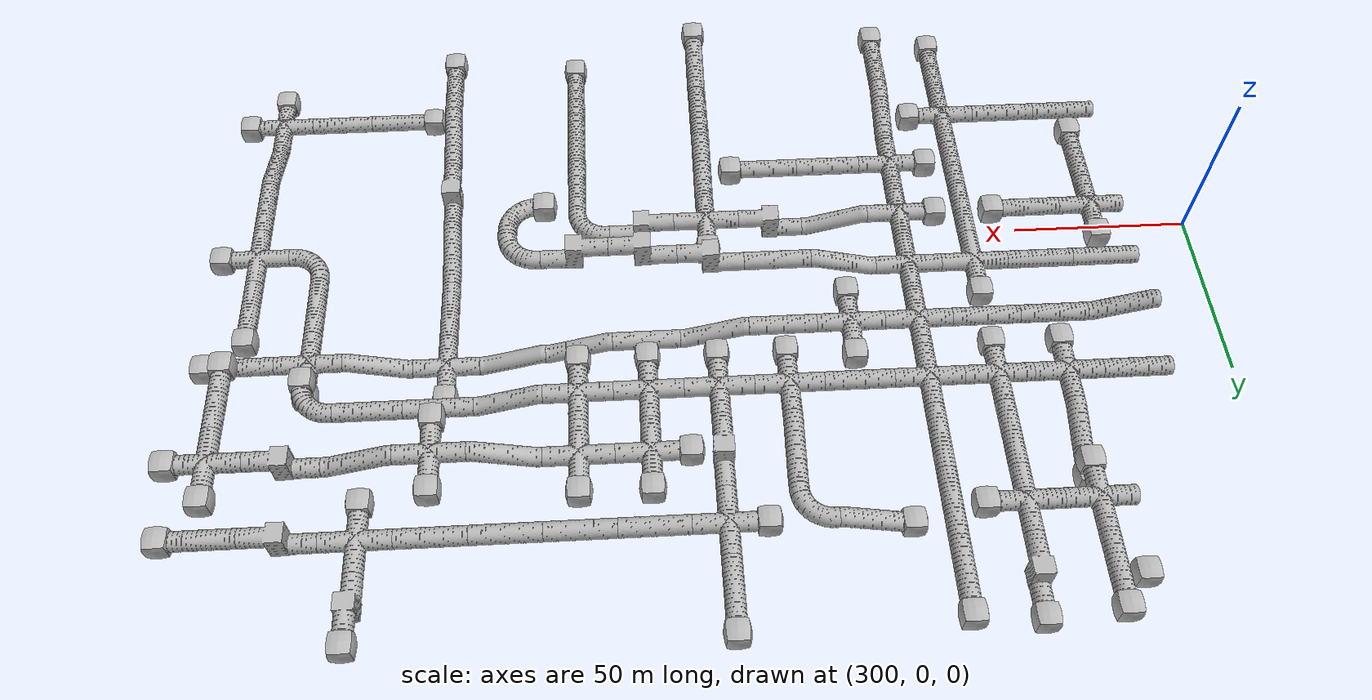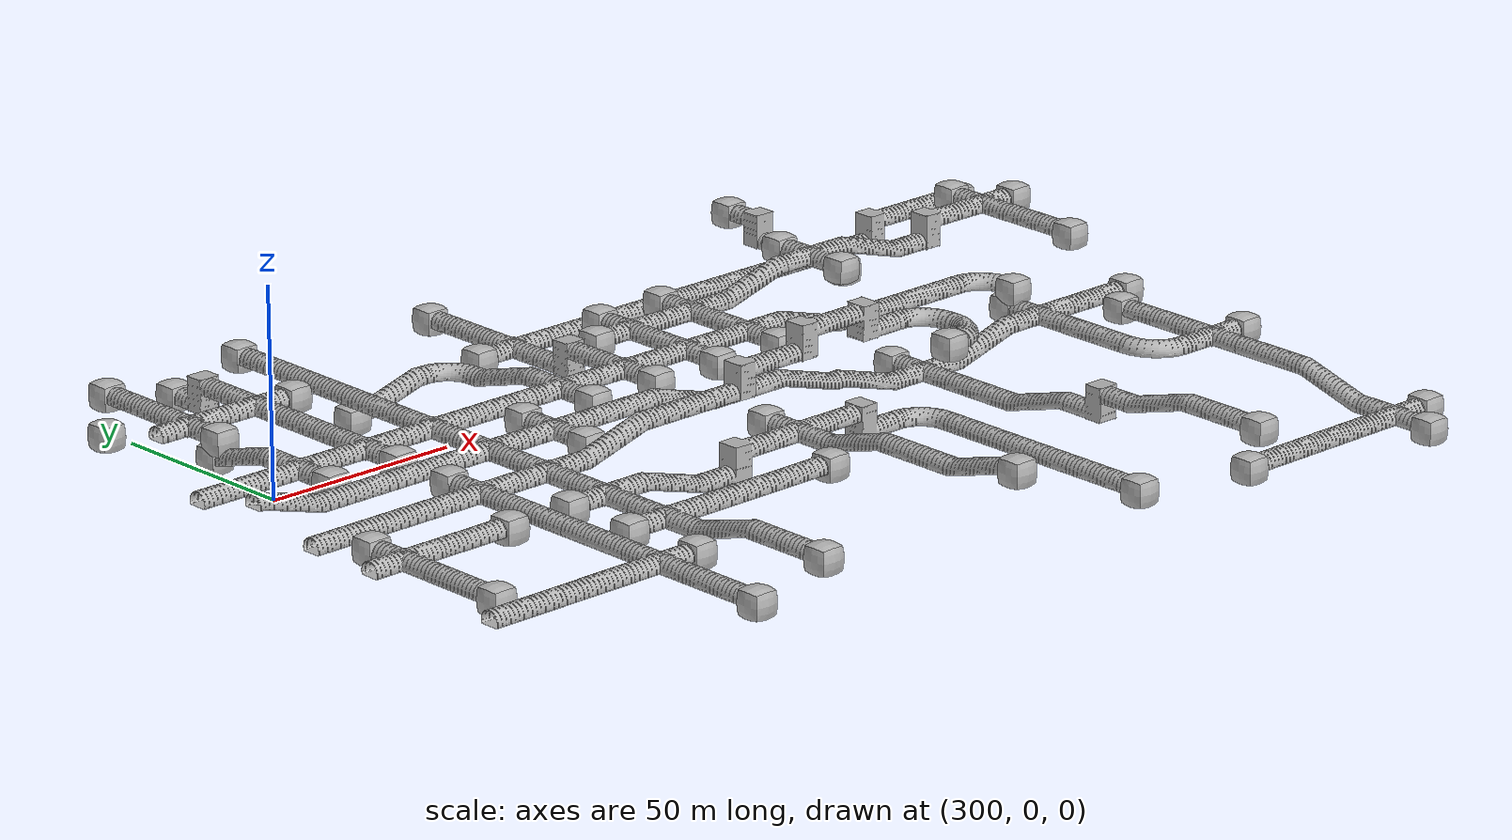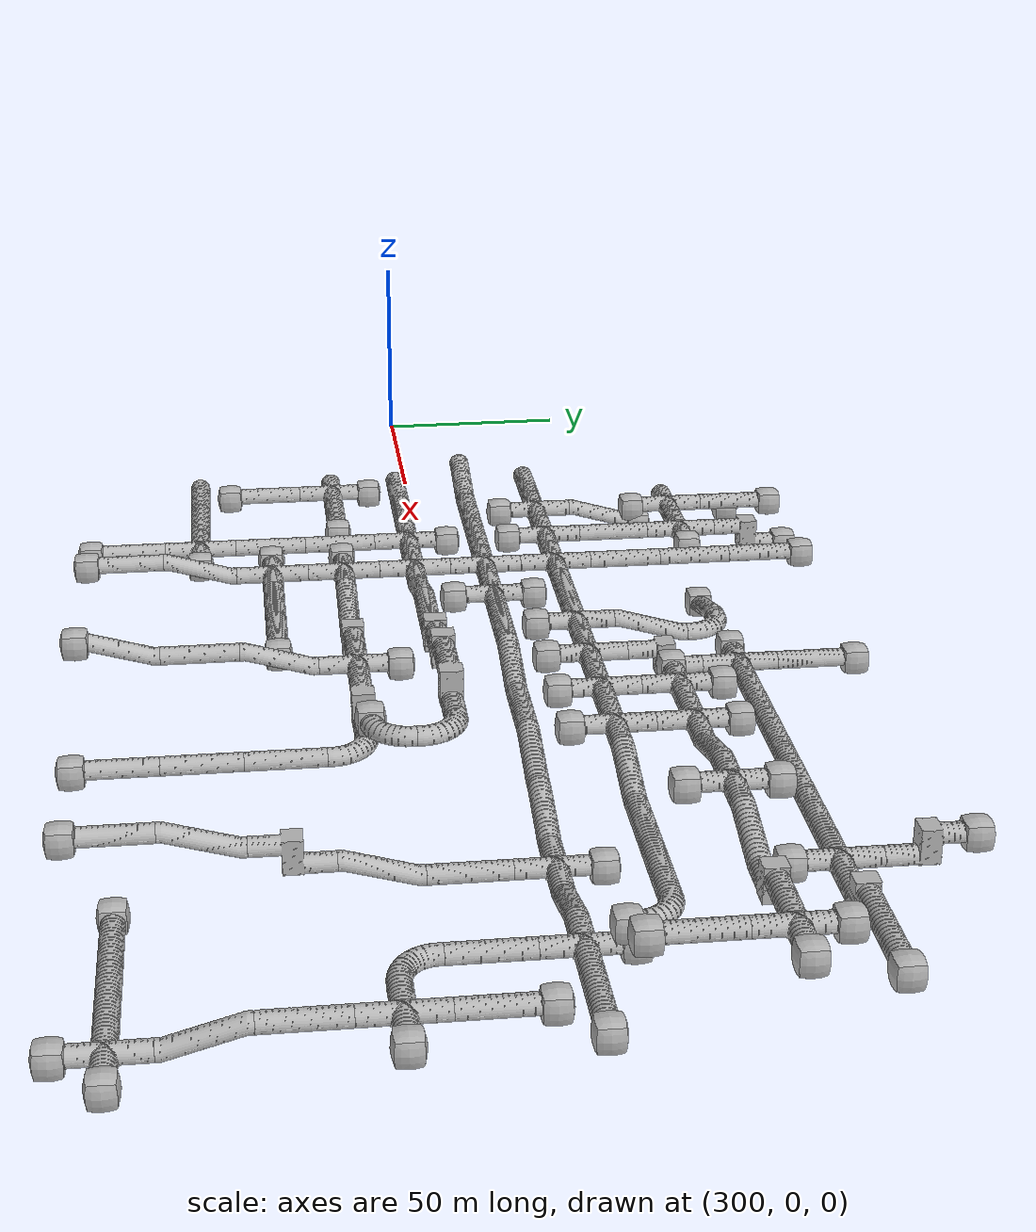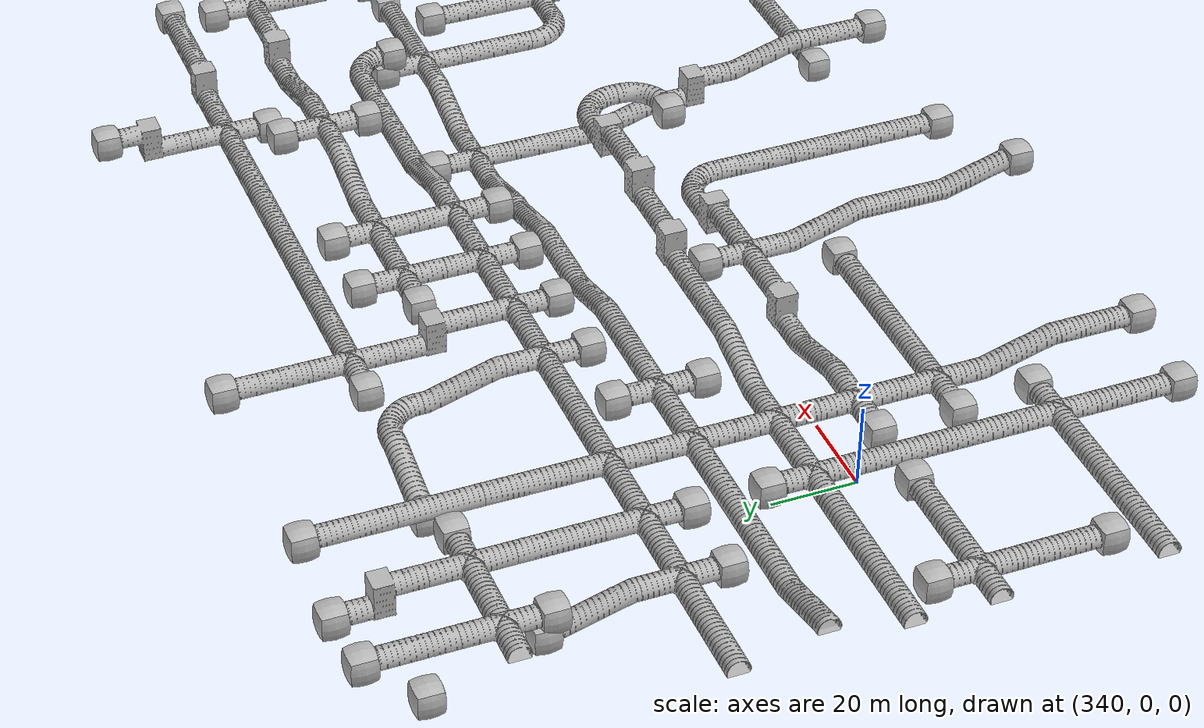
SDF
<sdf version="1.6">
 <world name="tunnel_circuit_05">
  <include>
   <name>tile_24</name>
   <uri>model://tunnel_tile_blocker</uri>
   <pose>331.000000 100.000000 -20.000000 0 0 0.000000</pose>
  </include>
  <include>
   <name>tile_25</name>
   <uri>model://tunnel_tile_5</uri>
   <pose>340.000000 100.000000 -15.000000 0 0 3.141593</pose>
  </include>
  <include>
   <name>tile_26</name>
   <uri>model://tunnel_tile_blocker</uri>
   <pose>340.000000 111.000000 -15.000000 0 0 0.000000</pose>
  </include>
  <include>
   <name>tile_27</name>
   <uri>model://tunnel_tile_7</uri>
   <pose>360.000000 100.000000 -20.000000 0 0 3.141593</pose>
  </include>
  <include>
   <name>tile_28</name>
   <uri>model://tunnel_tile_blocker</uri>
   <pose>360.000000 111.000000 -20.000000 0 0 0.000000</pose>
  </include>
  <include>
   <name>tile_29</name>
   <uri>model://tunnel_tile_5</uri>
   <pose>380.000000 100.000000 -15.000000 0 0 3.141593</pose>
  </include>
  <include>
   <name>tile_30</name>
   <uri>model://tunnel_tile_blocker</uri>
   <pose>380.000000 111.000000 -15.000000 0 0 0.000000</pose>
  </include>
  <include>
   <name>tile_31</name>
   <uri>model://tunnel_tile_5</uri>
   <pose>440.000000 100.000000 -20.000000 0 0 3.141593</pose>
  </include>
  <include>
   <name>tile_32</name>
   <uri>model://tunnel_tile_blocker</uri>
   <pose>440.000000 111.000000 -20.000000 0 0 0.000000</pose>
  </include>
  <include>
   <name>backpack_3</name>
   <uri>model://Backpack</uri>
   <pose>441.300000 107.200000 -20.000000 0 0 0.785398</pose>
  </include>
  <include>
   <name>tile_33</name>
   <uri>model://tunnel_tile_7</uri>
   <pose>540.000000 100.000000 -20.000000 0 0 0.000000</pose>
  </include>
  <include>
   <name>tile_34</name>
   <uri>model://tunnel_tile_blocker</uri>
   <pose>540.000000 111.000000 -15.000000 0 0 0.000000</pose>
  </include>
  <include>
   <name>extinguisher_1</name>
   <uri>model://Extinguisher</uri>
   <pose>541.200000 105.200000 -15.000000 0 0 0.000000</pose>
  </include>
  <include>
   <name>tile_48</name>
   <uri>model://tunnel_tile_1</uri>
   <pose>340.000000 80.000000 -15.000000 0 0 0.000000</pose>
  </include>
  <include>
   <name>tile_49</name>
   <uri>model://tunnel_tile_blocker</uri>
   <pose>340.000000 69.000000 -15.000000 0 0 0.000000</pose>
  </include>
  <include>
   <name>tile_50</name>
   <uri>model://tunnel_tile_1</uri>
   <pose>360.000000 80.000000 -15.000000 0 0 0.000000</pose>
  </include>
  <include>
   <name>tile_51</name>
   <uri>model://tunnel_tile_blocker</uri>
   <pose>371.000000 80.000000 -15.000000 0 0 0.000000</pose>
  </include>
  <include>
   <name>tile_52</name>
   <uri>model://tunnel_tile_5</uri>
   <pose>380.000000 80.000000 -15.000000 0 0 3.141593</pose>
  </include>
  <include>
   <name>tile_53</name>
   <uri>model://tunnel_tile_6</uri>
   <pose>400.000000 80.000000 -25.000000 0 0 4.712389</pose>
  </include>
  <include>
   <name>tile_54</name>
   <uri>model://tunnel_tile_blocker</uri>
   <pose>389.000000 80.000000 -25.000000 0 0 0.000000</pose>
  </include>
  <include>
   <name>tile_55</name>
   <uri>model://tunnel_tile_2</uri>
   <pose>420.000000 80.000000 -20.000000 0 0 4.712389</pose>
  </include>
  <include>
   <name>tile_56</name>
   <uri>model://tunnel_tile_1</uri>
   <pose>440.000000 80.000000 -20.000000 0 0 0.000000</pose>
  </include>
  <include>
   <name>tile_57</name>
   <uri>model://tunnel_tile_blocker</uri>
   <pose>429.000000 80.000000 -20.000000 0 0 0.000000</pose>
  </include>
  <include>
   <name>tile_58</name>
   <uri>model://tunnel_tile_5</uri>
   <pose>460.000000 80.000000 -20.000000 0 0 1.570796</pose>
  </include>
  <include>
   <name>tile_59</name>
   <uri>model://tunnel_tile_5</uri>
   <pose>480.000000 80.000000 -20.000000 0 0 1.570796</pose>
  </include>
  <include>
   <name>tile_60</name>
   <uri>model://tunnel_tile_5</uri>
   <pose>500.000000 80.000000 -20.000000 0 0 1.570796</pose>
  </include>
  <include>
   <name>tile_61</name>
   <uri>model://tunnel_tile_5</uri>
   <pose>520.000000 80.000000 -20.000000 0 0 1.570796</pose>
  </include>
  <include>
   <name>tile_62</name>
   <uri>model://tunnel_tile_1</uri>
   <pose>540.000000 80.000000 -20.000000 0 0 0.000000</pose>
  </include>
  <include>
   <name>tile_63</name>
   <uri>model://tunnel_tile_blocker</uri>
   <pose>540.000000 69.000000 -20.000000 0 0 0.000000</pose>
  </include>
  <include>
   <name>tile_64</name>
   <uri>model://tunnel_tile_7</uri>
   <pose>560.000000 80.000000 -20.000000 0 0 4.712389</pose>
  </include>
  <include>
   <name>tile_65</name>
   <uri>model://tunnel_tile_5</uri>
   <pose>580.000000 80.000000 -15.000000 0 0 1.570796</pose>
  </include>
  <include>
   <name>tile_66</name>
   <uri>model://tunnel_tile_blocker</uri>
   <pose>591.000000 80.000000 -15.000000 0 0 0.000000</pose>
  </include>
  <include>
   <name>tile_74</name>
   <uri>model://tunnel_tile_6</uri>
   <pose>340.000000 60.000000 -20.000000 0 0 3.141593</pose>
  </include>
  <include>
   <name>tile_75</name>
   <uri>model://tunnel_tile_blocker</uri>
   <pose>340.000000 71.000000 -20.000000 0 0 0.000000</pose>
  </include>
  <include>
   <name>tile_76</name>
   <uri>model://tunnel_tile_5</uri>
   <pose>360.000000 60.000000 -15.000000 0 0 3.141593</pose>
  </include>
  <include>
   <name>tile_77</name>
   <uri>model://tunnel_tile_5</uri>
   <pose>380.000000 60.000000 -15.000000 0 0 3.141593</pose>
  </include>
  <include>
   <name>tile_78</name>
   <uri>model://tunnel_tile_6</uri>
   <pose>420.000000 60.000000 -20.000000 0 0 3.141593</pose>
  </include>
  <include>
   <name>tile_79</name>
   <uri>model://tunnel_tile_7</uri>
   <pose>440.000000 60.000000 -20.000000 0 0 3.141593</pose>
  </include>
  <include>
   <name>tile_80</name>
   <uri>model://tunnel_tile_1</uri>
   <pose>460.000000 60.000000 -15.000000 0 0 0.000000</pose>
  </include>
  <include>
   <name>tile_81</name>
   <uri>model://tunnel_tile_blocker</uri>
   <pose>449.000000 60.000000 -15.000000 0 0 0.000000</pose>
  </include>
  <include>
   <name>tile_82</name>
   <uri>model://tunnel_tile_blocker</uri>
   <pose>460.000000 71.000000 -15.000000 0 0 0.000000</pose>
  </include>
  <include>
   <name>tile_83</name>
   <uri>model://tunnel_tile_1</uri>
   <pose>480.000000 60.000000 -15.000000 0 0 0.000000</pose>
  </include>
  <include>
   <name>tile_84</name>
   <uri>model://tunnel_tile_blocker</uri>
   <pose>480.000000 71.000000 -15.000000 0 0 0.000000</pose>
  </include>
  <include>
   <name>tile_85</name>
   <uri>model://tunnel_tile_6</uri>
   <pose>500.000000 60.000000 -15.000000 0 0 4.712389</pose>
  </include>
  <include>
   <name>tile_86</name>
   <uri>model://tunnel_tile_1</uri>
   <pose>520.000000 60.000000 -10.000000 0 0 0.000000</pose>
  </include>
  <include>
   <name>tile_87</name>
   <uri>model://tunnel_tile_blocker</uri>
   <pose>520.000000 71.000000 -10.000000 0 0 0.000000</pose>
  </include>
  <include>
   <name>tile_88</name>
   <uri>model://tunnel_tile_blocker</uri>
   <pose>520.000000 49.000000 -10.000000 0 0 0.000000</pose>
  </include>
  <include>
   <name>tile_89</name>
   <uri>model://tunnel_tile_6</uri>
   <pose>540.000000 60.000000 -15.000000 0 0 1.570796</pose>
  </include>
  <include>
   <name>tile_90</name>
   <uri>model://tunnel_tile_7</uri>
   <pose>560.000000 60.000000 -15.000000 0 0 4.712389</pose>
  </include>
  <include>
   <name>tile_91</name>
   <uri>model://tunnel_tile_1</uri>
   <pose>580.000000 60.000000 -10.000000 0 0 0.000000</pose>
  </include>
  <include>
   <name>tile_92</name>
   <uri>model://tunnel_tile_blocker</uri>
   <pose>580.000000 71.000000 -10.000000 0 0 0.000000</pose>
  </include>
  <include>
   <name>tile_93</name>
   <uri>model://tunnel_tile_blocker</uri>
   <pose>591.000000 60.000000 -10.000000 0 0 0.000000</pose>
  </include>
  <include>
   <name>tile_114</name>
   <uri>model://tunnel_tile_5</uri>
   <pose>320.000000 40.000000 -15.000000 0 0 4.712389</pose>
  </include>
  <include>
   <name>tile_115</name>
   <uri>model://tunnel_tile_1</uri>
   <pose>340.000000 40.000000 -15.000000 0 0 0.000000</pose>
  </include>
  <include>
   <name>tile_116</name>
   <uri>model://tunnel_tile_blocker</uri>
   <pose>340.000000 29.000000 -15.000000 0 0 0.000000</pose>
  </include>
  <include>
   <name>tile_117</name>
   <uri>model://tunnel_tile_1</uri>
   <pose>360.000000 40.000000 -15.000000 0 0 0.000000</pose>
  </include>
  <include>
   <name>tile_118</name>
   <uri>model://tunnel_tile_blocker</uri>
   <pose>360.000000 29.000000 -15.000000 0 0 0.000000</pose>
  </include>
  <include>
   <name>tile_119</name>
   <uri>model://tunnel_tile_1</uri>
   <pose>380.000000 40.000000 -15.000000 0 0 0.000000</pose>
  </include>
  <include>
   <name>tile_120</name>
   <uri>model://tunnel_tile_5</uri>
   <pose>400.000000 40.000000 -15.000000 0 0 1.570796</pose>
  </include>
  <include>
   <name>tile_121</name>
   <uri>model://tunnel_tile_1</uri>
   <pose>420.000000 40.000000 -15.000000 0 0 0.000000</pose>
  </include>
  <include>
   <name>tile_122</name>
   <uri>model://tunnel_tile_blocker</uri>
   <pose>420.000000 29.000000 -15.000000 0 0 0.000000</pose>
  </include>
  <include>
   <name>tile_123</name>
   <uri>model://tunnel_tile_1</uri>
   <pose>440.000000 40.000000 -15.000000 0 0 0.000000</pose>
  </include>
  <include>
   <name>tile_124</name>
   <uri>model://tunnel_tile_blocker</uri>
   <pose>440.000000 29.000000 -15.000000 0 0 0.000000</pose>
  </include>
  <include>
   <name>tile_125</name>
   <uri>model://tunnel_tile_1</uri>
   <pose>460.000000 40.000000 -15.000000 0 0 0.000000</pose>
  </include>
  <include>
   <name>tile_126</name>
   <uri>model://tunnel_tile_blocker</uri>
   <pose>460.000000 29.000000 -15.000000 0 0 0.000000</pose>
  </include>
  <include>
   <name>tile_127</name>
   <uri>model://tunnel_tile_1</uri>
   <pose>480.000000 40.000000 -15.000000 0 0 0.000000</pose>
  </include>
  <include>
   <name>tile_128</name>
   <uri>model://tunnel_tile_blocker</uri>
   <pose>480.000000 29.000000 -15.000000 0 0 0.000000</pose>
  </include>
  <include>
   <name>tile_129</name>
   <uri>model://tunnel_tile_6</uri>
   <pose>500.000000 40.000000 -20.000000 0 0 1.570796</pose>
  </include>
  <include>
   <name>tile_130</name>
   <uri>model://tunnel_tile_5</uri>
   <pose>520.000000 40.000000 -20.000000 0 0 1.570796</pose>
  </include>
  <include>
   <name>tile_131</name>
   <uri>model://tunnel_tile_5</uri>
   <pose>540.000000 40.000000 -20.000000 0 0 1.570796</pose>
  </include>
  <include>
   <name>tile_132</name>
   <uri>model://tunnel_tile_2</uri>
   <pose>560.000000 40.000000 -20.000000 0 0 4.712389</pose>
  </include>
  <include>
   <name>tile_133</name>
   <uri>model://tunnel_tile_blocker</uri>
   <pose>560.000000 29.000000 -20.000000 0 0 0.000000</pose>
  </include>
  <include>
   <name>tile_134</name>
   <uri>model://tunnel_tile_5</uri>
   <pose>580.000000 40.000000 -10.000000 0 0 0.000000</pose>
  </include>
  <include>
   <name>tile_135</name>
   <uri>model://tunnel_tile_blocker</uri>
   <pose>580.000000 29.000000 -10.000000 0 0 0.000000</pose>
  </include>
  <include>
   <name>phone_1</name>
   <uri>model://Phone</uri>
   <pose>578.800000 32.800000 -9.992000 1.570796 3.141593 0.000000</pose>
  </include>
  <include>
   <name>tile_154</name>
   <uri>model://tunnel_tile_6</uri>
   <pose>320.000000 20.000000 -15.000000 0 0 1.570796</pose>
  </include>
  <include>
   <name>tile_155</name>
   <uri>model://tunnel_tile_5</uri>
   <pose>340.000000 20.000000 -15.000000 0 0 1.570796</pose>
  </include>
  <include>
   <name>tile_156</name>
   <uri>model://tunnel_tile_5</uri>
   <pose>360.000000 20.000000 -15.000000 0 0 1.570796</pose>
  </include>
  <include>
   <name>tile_157</name>
   <uri>model://tunnel_tile_1</uri>
   <pose>380.000000 20.000000 -15.000000 0 0 0.000000</pose>
  </include>
  <include>
   <name>tile_158</name>
   <uri>model://tunnel_tile_1</uri>
   <pose>400.000000 20.000000 -15.000000 0 0 0.000000</pose>
  </include>
  <include>
   <name>tile_159</name>
   <uri>model://tunnel_tile_blocker</uri>
   <pose>400.000000 31.000000 -15.000000 0 0 0.000000</pose>
  </include>
  <include>
   <name>tile_160</name>
   <uri>model://tunnel_tile_blocker</uri>
   <pose>400.000000 9.000000 -15.000000 0 0 0.000000</pose>
  </include>
  <include>
   <name>tile_161</name>
   <uri>model://tunnel_tile_5</uri>
   <pose>420.000000 20.000000 -15.000000 0 0 1.570796</pose>
  </include>
  <include>
   <name>tile_162</name>
   <uri>model://tunnel_tile_6</uri>
   <pose>440.000000 20.000000 -20.000000 0 0 1.570796</pose>
  </include>
  <include>
   <name>tile_163</name>
   <uri>model://tunnel_tile_5</uri>
   <pose>460.000000 20.000000 -20.000000 0 0 1.570796</pose>
  </include>
  <include>
   <name>tile_164</name>
   <uri>model://tunnel_tile_6</uri>
   <pose>480.000000 20.000000 -25.000000 0 0 1.570796</pose>
  </include>
  <include>
   <name>tile_165</name>
   <uri>model://tunnel_tile_6</uri>
   <pose>500.000000 20.000000 -30.000000 0 0 1.570796</pose>
  </include>
  <include>
   <name>tile_166</name>
   <uri>model://tunnel_tile_1</uri>
   <pose>520.000000 20.000000 -30.000000 0 0 0.000000</pose>
  </include>
  <include>
   <name>tile_167</name>
   <uri>model://tunnel_tile_blocker</uri>
   <pose>520.000000 31.000000 -30.000000 0 0 0.000000</pose>
  </include>
  <include>
   <name>tile_168</name>
   <uri>model://tunnel_tile_6</uri>
   <pose>540.000000 20.000000 -30.000000 0 0 4.712389</pose>
  </include>
  <include>
   <name>tile_169</name>
   <uri>model://tunnel_tile_1</uri>
   <pose>560.000000 20.000000 -25.000000 0 0 0.000000</pose>
  </include>
  <include>
   <name>tile_170</name>
   <uri>model://tunnel_tile_blocker</uri>
   <pose>560.000000 31.000000 -25.000000 0 0 0.000000</pose>
  </include>
  <include>
   <name>tile_171</name>
   <uri>model://tunnel_tile_5</uri>
   <pose>580.000000 20.000000 -25.000000 0 0 1.570796</pose>
  </include>
  <include>
   <name>tile_172</name>
   <uri>model://tunnel_tile_blocker</uri>
   <pose>591.000000 20.000000 -25.000000 0 0 0.000000</pose>
  </include>
  <include>
   <name>tile_188</name>
   <uri>model://tunnel_tile_5</uri>
   <pose>320.000000 0.000000 -15.000000 0 0 4.712389</pose>
  </include>
  <include>
   <name>tile_189</name>
   <uri>model://tunnel_tile_5</uri>
   <pose>340.000000 0.000000 -15.000000 0 0 4.712389</pose>
  </include>
  <include>
   <name>tile_190</name>
   <uri>model://tunnel_tile_1</uri>
   <pose>360.000000 0.000000 -15.000000 0 0 0.000000</pose>
  </include>
  <include>
   <name>tile_191</name>
   <uri>model://tunnel_tile_blocker</uri>
   <pose>360.000000 11.000000 -15.000000 0 0 0.000000</pose>
  </include>
  <include>
   <name>tile_192</name>
   <uri>model://tunnel_tile_1</uri>
   <pose>380.000000 0.000000 -15.000000 0 0 0.000000</pose>
  </include>
  <include>
   <name>tile_193</name>
   <uri>model://tunnel_tile_6</uri>
   <pose>400.000000 0.000000 -15.000000 0 0 4.712389</pose>
  </include>
  <include>
   <name>tile_194</name>
   <uri>model://tunnel_tile_5</uri>
   <pose>420.000000 0.000000 -10.000000 0 0 1.570796</pose>
  </include>
  <include>
   <name>tile_195</name>
   <uri>model://tunnel_tile_7</uri>
   <pose>440.000000 0.000000 -10.000000 0 0 4.712389</pose>
  </include>
  <include>
   <name>tile_196</name>
   <uri>model://tunnel_tile_7</uri>
   <pose>460.000000 0.000000 -5.000000 0 0 4.712389</pose>
  </include>
  <include>
   <name>tile_197</name>
   <uri>model://tunnel_tile_7</uri>
   <pose>480.000000 0.000000 -5.000000 0 0 1.570796</pose>
  </include>
  <include>
   <name>tile_198</name>
   <uri>model://tunnel_tile_2</uri>
   <pose>500.000000 0.000000 -5.000000 0 0 4.712389</pose>
  </include>
  <include>
   <name>tile_199</name>
   <uri>model://tunnel_tile_5</uri>
   <pose>520.000000 0.000000 -30.000000 0 0 0.000000</pose>
  </include>
  <include>
   <name>tile_200</name>
   <uri>model://tunnel_tile_5</uri>
   <pose>560.000000 0.000000 -25.000000 0 0 0.000000</pose>
  </include>
  <include>
   <name>tile_201</name>
   <uri>model://tunnel_tile_5</uri>
   <pose>580.000000 0.000000 -25.000000 0 0 3.141593</pose>
  </include>
  <include>
   <name>tile_202</name>
   <uri>model://tunnel_tile_blocker</uri>
   <pose>580.000000 11.000000 -25.000000 0 0 0.000000</pose>
  </include>
  <include>
   <name>tile_219</name>
   <uri>model://tunnel_tile_1</uri>
   <pose>320.000000 -20.000000 -15.000000 0 0 0.000000</pose>
  </include>
  <include>
   <name>tile_220</name>
   <uri>model://tunnel_tile_blocker</uri>
   <pose>320.000000 -9.000000 -15.000000 0 0 0.000000</pose>
  </include>
  <include>
   <name>tile_221</name>
   <uri>model://tunnel_tile_5</uri>
   <pose>340.000000 -20.000000 -15.000000 0 0 1.570796</pose>
  </include>
  <include>
   <name>tile_222</name>
   <uri>model://tunnel_tile_blocker</uri>
   <pose>351.000000 -20.000000 -15.000000 0 0 0.000000</pose>
  </include>
  <include>
   <name>tile_223</name>
   <uri>model://tunnel_tile_5</uri>
   <pose>360.000000 -20.000000 -15.000000 0 0 0.000000</pose>
  </include>
  <include>
   <name>tile_224</name>
   <uri>model://tunnel_tile_1</uri>
   <pose>380.000000 -20.000000 -15.000000 0 0 0.000000</pose>
  </include>
  <include>
   <name>tile_225</name>
   <uri>model://tunnel_tile_blocker</uri>
   <pose>369.000000 -20.000000 -15.000000 0 0 0.000000</pose>
  </include>
  <include>
   <name>tile_226</name>
   <uri>model://tunnel_tile_6</uri>
   <pose>400.000000 -20.000000 -20.000000 0 0 1.570796</pose>
  </include>
  <include>
   <name>tile_227</name>
   <uri>model://tunnel_tile_7</uri>
   <pose>420.000000 -20.000000 -20.000000 0 0 4.712389</pose>
  </include>
  <include>
   <name>tile_228</name>
   <uri>model://tunnel_tile_1</uri>
   <pose>440.000000 -20.000000 -15.000000 0 0 0.000000</pose>
  </include>
  <include>
   <name>tile_229</name>
   <uri>model://tunnel_tile_blocker</uri>
   <pose>440.000000 -9.000000 -15.000000 0 0 0.000000</pose>
  </include>
  <include>
   <name>tile_230</name>
   <uri>model://tunnel_tile_7</uri>
   <pose>460.000000 -20.000000 -20.000000 0 0 1.570796</pose>
  </include>
  <include>
   <name>tile_231</name>
   <uri>model://tunnel_tile_2</uri>
   <pose>480.000000 -20.000000 -20.000000 0 0 4.712389</pose>
  </include>
  <include>
   <name>tile_232</name>
   <uri>model://tunnel_tile_2</uri>
   <pose>500.000000 -20.000000 -5.000000 0 0 3.141593</pose>
  </include>
  <include>
   <name>tile_233</name>
   <uri>model://tunnel_tile_blocker</uri>
   <pose>489.000000 -20.000000 -5.000000 0 0 0.000000</pose>
  </include>
  <include>
   <name>extinguisher_3</name>
   <uri>model://Extinguisher</uri>
   <pose>495.000000 -16.800000 -5.000000 0 0 0.000000</pose>
  </include>
  <include>
   <name>tile_234</name>
   <uri>model://tunnel_tile_6</uri>
   <pose>520.000000 -20.000000 -30.000000 0 0 3.141593</pose>
  </include>
  <include>
   <name>tile_235</name>
   <uri>model://tunnel_tile_2</uri>
   <pose>560.000000 -20.000000 -25.000000 0 0 1.570796</pose>
  </include>
  <include>
   <name>tile_236</name>
   <uri>model://tunnel_tile_1</uri>
   <pose>580.000000 -20.000000 -25.000000 0 0 0.000000</pose>
  </include>
  <include>
   <name>tile_237</name>
   <uri>model://tunnel_tile_blocker</uri>
   <pose>591.000000 -20.000000 -25.000000 0 0 0.000000</pose>
  </include>
  <include>
   <name>tile_255</name>
   <uri>model://tunnel_tile_5</uri>
   <pose>320.000000 -40.000000 -15.000000 0 0 0.000000</pose>
  </include>
  <include>
   <name>tile_256</name>
   <uri>model://tunnel_tile_blocker</uri>
   <pose>320.000000 -51.000000 -15.000000 0 0 0.000000</pose>
  </include>
  <include>
   <name>tile_257</name>
   <uri>model://tunnel_tile_5</uri>
   <pose>360.000000 -40.000000 -15.000000 0 0 0.000000</pose>
  </include>
  <include>
   <name>tile_258</name>
   <uri>model://tunnel_tile_1</uri>
   <pose>380.000000 -40.000000 -15.000000 0 0 0.000000</pose>
  </include>
  <include>
   <name>tile_259</name>
   <uri>model://tunnel_tile_blocker</uri>
   <pose>369.000000 -40.000000 -15.000000 0 0 0.000000</pose>
  </include>
  <include>
   <name>tile_260</name>
   <uri>model://tunnel_tile_5</uri>
   <pose>400.000000 -40.000000 -15.000000 0 0 1.570796</pose>
  </include>
  <include>
   <name>tile_261</name>
   <uri>model://tunnel_tile_5</uri>
   <pose>420.000000 -40.000000 -15.000000 0 0 1.570796</pose>
  </include>
  <include>
   <name>tile_262</name>
   <uri>model://tunnel_tile_blocker</uri>
   <pose>431.000000 -40.000000 -15.000000 0 0 0.000000</pose>
  </include>
  <include>
   <name>tile_263</name>
   <uri>model://tunnel_tile_6</uri>
   <pose>440.000000 -40.000000 -15.000000 0 0 3.141593</pose>
  </include>
  <include>
   <name>tile_264</name>
   <uri>model://tunnel_tile_5</uri>
   <pose>480.000000 -40.000000 -20.000000 0 0 0.000000</pose>
  </include>
  <include>
   <name>tile_265</name>
   <uri>model://tunnel_tile_7</uri>
   <pose>520.000000 -40.000000 -25.000000 0 0 3.141593</pose>
  </include>
  <include>
   <name>tile_266</name>
   <uri>model://tunnel_tile_5</uri>
   <pose>580.000000 -40.000000 -25.000000 0 0 0.000000</pose>
  </include>
  <include>
   <name>tile_283</name>
   <uri>model://tunnel_tile_5</uri>
   <pose>320.000000 -60.000000 -15.000000 0 0 4.712389</pose>
  </include>
  <include>
   <name>tile_284</name>
   <uri>model://tunnel_tile_5</uri>
   <pose>340.000000 -60.000000 -15.000000 0 0 4.712389</pose>
  </include>
  <include>
   <name>tile_285</name>
   <uri>model://tunnel_tile_1</uri>
   <pose>360.000000 -60.000000 -15.000000 0 0 0.000000</pose>
  </include>
  <include>
   <name>tile_286</name>
   <uri>model://tunnel_tile_blocker</uri>
   <pose>371.000000 -60.000000 -15.000000 0 0 0.000000</pose>
  </include>
  <include>
   <name>tile_287</name>
   <uri>model://tunnel_tile_6</uri>
   <pose>380.000000 -60.000000 -15.000000 0 0 3.141593</pose>
  </include>
  <include>
   <name>tile_288</name>
   <uri>model://tunnel_tile_5</uri>
   <pose>440.000000 -60.000000 -10.000000 0 0 0.000000</pose>
  </include>
  <include>
   <name>tile_289</name>
   <uri>model://tunnel_tile_5</uri>
   <pose>480.000000 -60.000000 -20.000000 0 0 0.000000</pose>
  </include>
  <include>
   <name>tile_290</name>
   <uri>model://tunnel_tile_6</uri>
   <pose>520.000000 -60.000000 -20.000000 0 0 3.141593</pose>
  </include>
  <include>
   <name>tile_291</name>
   <uri>model://tunnel_tile_6</uri>
   <pose>580.000000 -60.000000 -30.000000 0 0 0.000000</pose>
  </include>
  <include>
   <name>tile_309</name>
   <uri>model://tunnel_tile_5</uri>
   <pose>360.000000 -80.000000 -15.000000 0 0 0.000000</pose>
  </include>
  <include>
   <name>tile_310</name>
   <uri>model://tunnel_tile_blocker</uri>
   <pose>360.000000 -91.000000 -15.000000 0 0 0.000000</pose>
  </include>
  <include>
   <name>tile_311</name>
   <uri>model://tunnel_tile_5</uri>
   <pose>380.000000 -80.000000 -10.000000 0 0 0.000000</pose>
  </include>
  <include>
   <name>tile_312</name>
   <uri>model://tunnel_tile_blocker</uri>
   <pose>380.000000 -91.000000 -10.000000 0 0 0.000000</pose>
  </include>
  <include>
   <name>extinguisher_4</name>
   <uri>model://Extinguisher</uri>
   <pose>382.000000 -87.200000 -10.000000 0 0 0.000000</pose>
  </include>
  <include>
   <name>tile_313</name>
   <uri>model://tunnel_tile_6</uri>
   <pose>440.000000 -80.000000 -10.000000 0 0 3.141593</pose>
  </include>
  <include>
   <name>tile_314</name>
   <uri>model://tunnel_tile_blocker</uri>
   <pose>440.000000 -91.000000 -5.000000 0 0 0.000000</pose>
  </include>
  <include>
   <name>phone_4</name>
   <uri>model://Phone</uri>
   <pose>441.300000 -71.800000 -9.886000 1.884956 3.141593 0.000000</pose>
  </include>
  <include>
   <name>tile_315</name>
   <uri>model://tunnel_tile_5</uri>
   <pose>480.000000 -80.000000 -20.000000 0 0 0.000000</pose>
  </include>
  <include>
   <name>tile_316</name>
   <uri>model://tunnel_tile_blocker</uri>
   <pose>480.000000 -91.000000 -20.000000 0 0 0.000000</pose>
  </include>
  <include>
   <name>tile_317</name>
   <uri>model://tunnel_tile_5</uri>
   <pose>520.000000 -80.000000 -15.000000 0 0 0.000000</pose>
  </include>
  <include>
   <name>tile_318</name>
   <uri>model://tunnel_tile_blocker</uri>
   <pose>520.000000 -91.000000 -15.000000 0 0 0.000000</pose>
  </include>
  <include>
   <name>tile_319</name>
   <uri>model://tunnel_tile_5</uri>
   <pose>540.000000 -80.000000 -30.000000 0 0 4.712389</pose>
  </include>
  <include>
   <name>tile_320</name>
   <uri>model://tunnel_tile_blocker</uri>
   <pose>529.000000 -80.000000 -30.000000 0 0 0.000000</pose>
  </include>
  <include>
   <name>tile_321</name>
   <uri>model://tunnel_tile_5</uri>
   <pose>560.000000 -80.000000 -30.000000 0 0 4.712389</pose>
  </include>
  <include>
   <name>tile_322</name>
   <uri>model://tunnel_tile_1</uri>
   <pose>580.000000 -80.000000 -30.000000 0 0 0.000000</pose>
  </include>
  <include>
   <name>tile_323</name>
   <uri>model://tunnel_tile_blocker</uri>
   <pose>591.000000 -80.000000 -30.000000 0 0 0.000000</pose>
  </include>
  <include>
   <name>tile_324</name>
   <uri>model://tunnel_tile_blocker</uri>
   <pose>580.000000 -91.000000 -30.000000 0 0 0.000000</pose>
  </include>
 </world>
</sdf>
